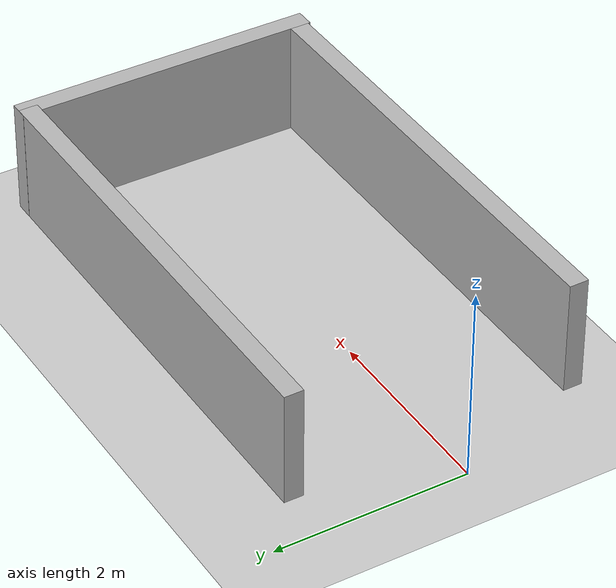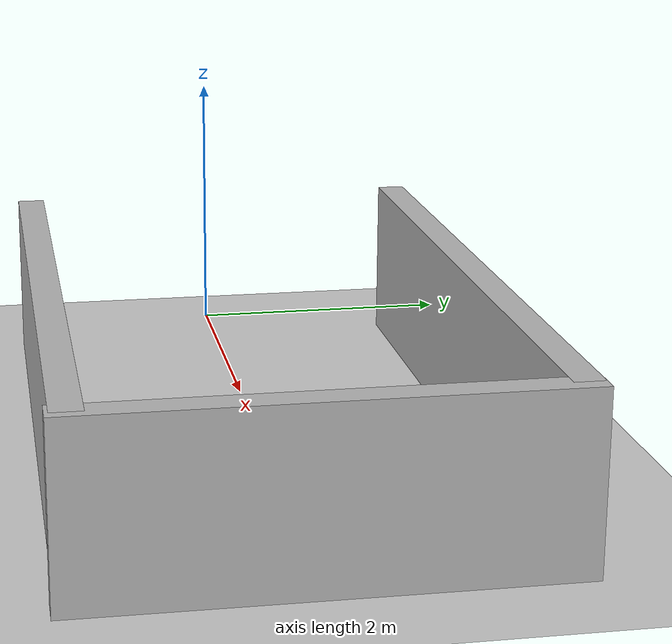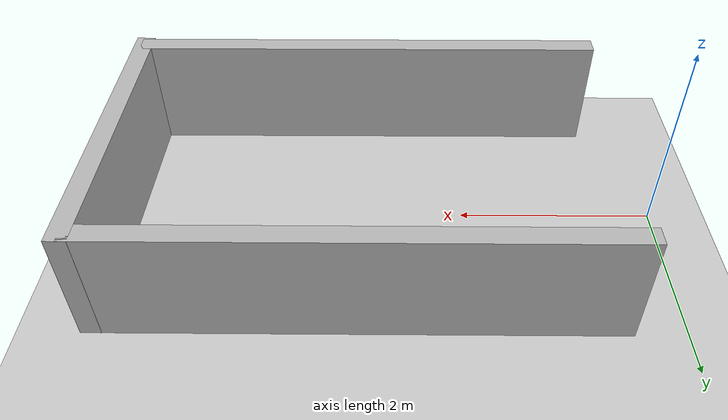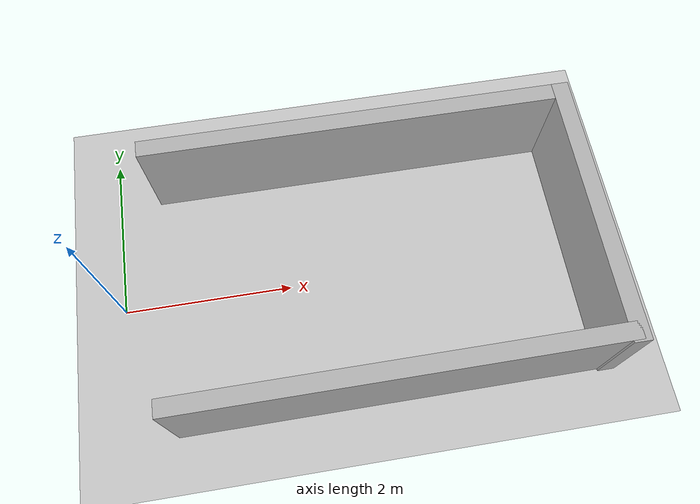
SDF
<?xml version="1.0"?>
<sdf version="1.6">
  <world name="v2-04g-r4-maneuver-s5074">
    <gravity>0 0 -9.81</gravity>
    <physics name="v2_deterministic" type="ode">
      <max_step_size>0.002</max_step_size>
      <real_time_update_rate>500</real_time_update_rate>
    </physics>
    <include>
      <uri>model://sun</uri>
    </include>
    <include>
      <uri>model://ground_plane</uri>
    </include>
    <model name="bay-left">
      <static>true</static>
      <pose>2.999630683 1.496049559 0.600000000 0 0 -0.000474084</pose>
      <link name="link">
        <collision name="collision">
          <geometry>
            <box>
              <size>5.000000 0.200000 1.200000</size>
            </box>
          </geometry>
        </collision>
        <visual name="visual">
          <geometry>
            <box>
              <size>5.000000 0.200000 1.200000</size>
            </box>
          </geometry>
        </visual>
      </link>
    </model>
    <model name="bay-right">
      <static>true</static>
      <pose>3.022550523 -1.482289428 0.600000000 0 0 0.000728660</pose>
      <link name="link">
        <collision name="collision">
          <geometry>
            <box>
              <size>5.000000 0.200000 1.200000</size>
            </box>
          </geometry>
        </collision>
        <visual name="visual">
          <geometry>
            <box>
              <size>5.000000 0.200000 1.200000</size>
            </box>
          </geometry>
        </visual>
      </link>
    </model>
    <model name="bay-back">
      <static>true</static>
      <pose>5.498824959 -0.004240381 0.600000000 0 0 -0.002654463</pose>
      <link name="link">
        <collision name="collision">
          <geometry>
            <box>
              <size>0.200000 3.200000 1.200000</size>
            </box>
          </geometry>
        </collision>
        <visual name="visual">
          <geometry>
            <box>
              <size>0.200000 3.200000 1.200000</size>
            </box>
          </geometry>
        </visual>
      </link>
    </model>
  </world>
</sdf>
